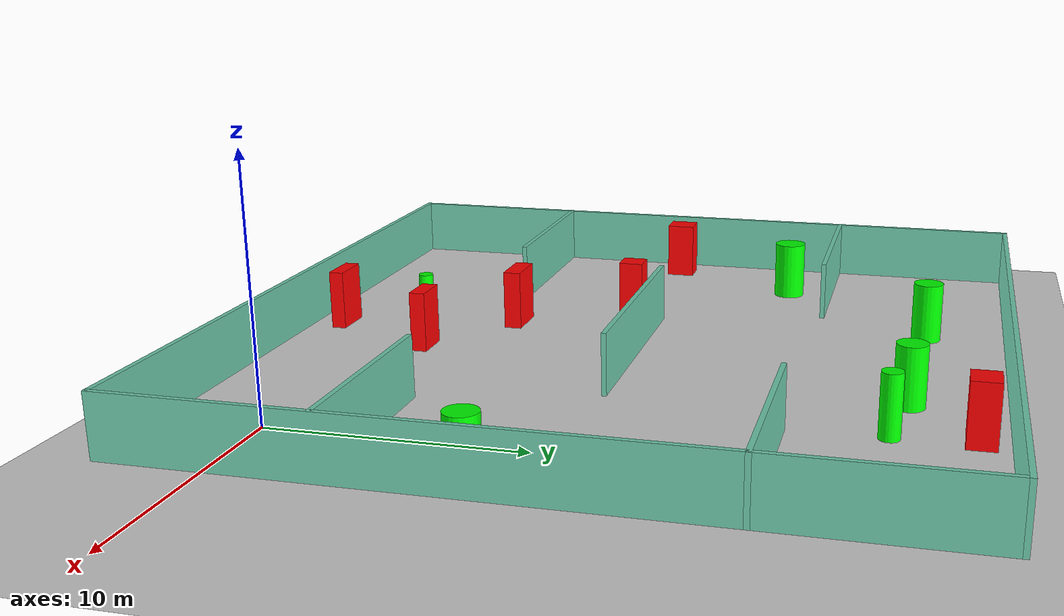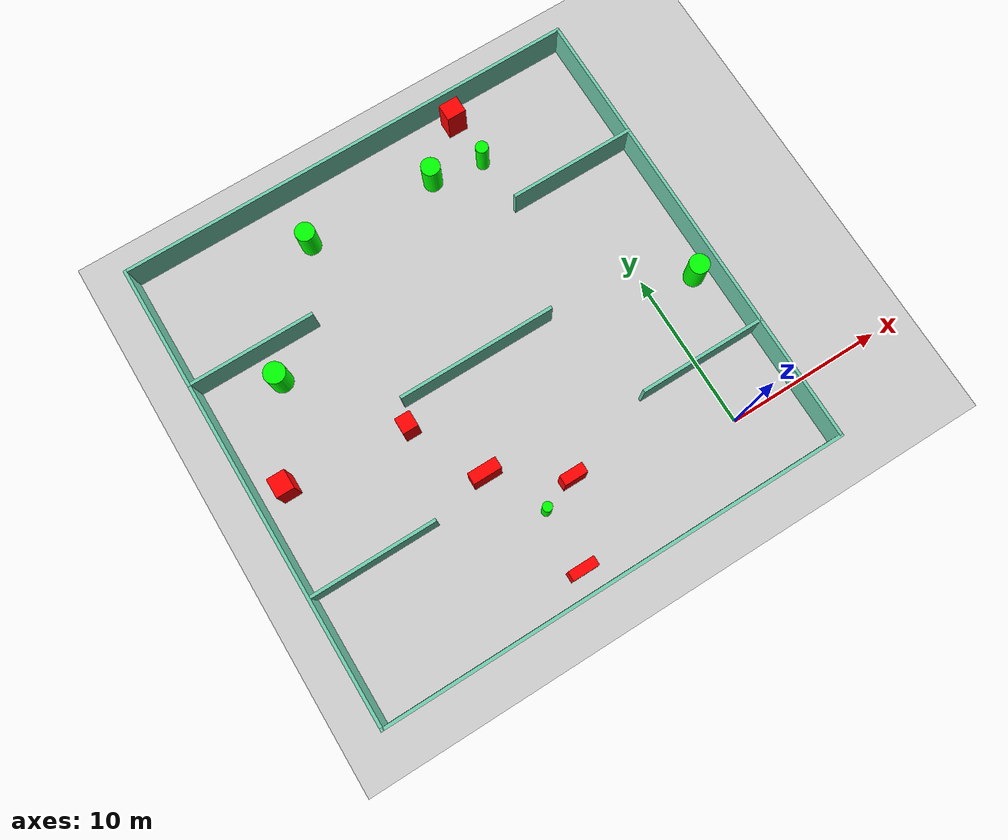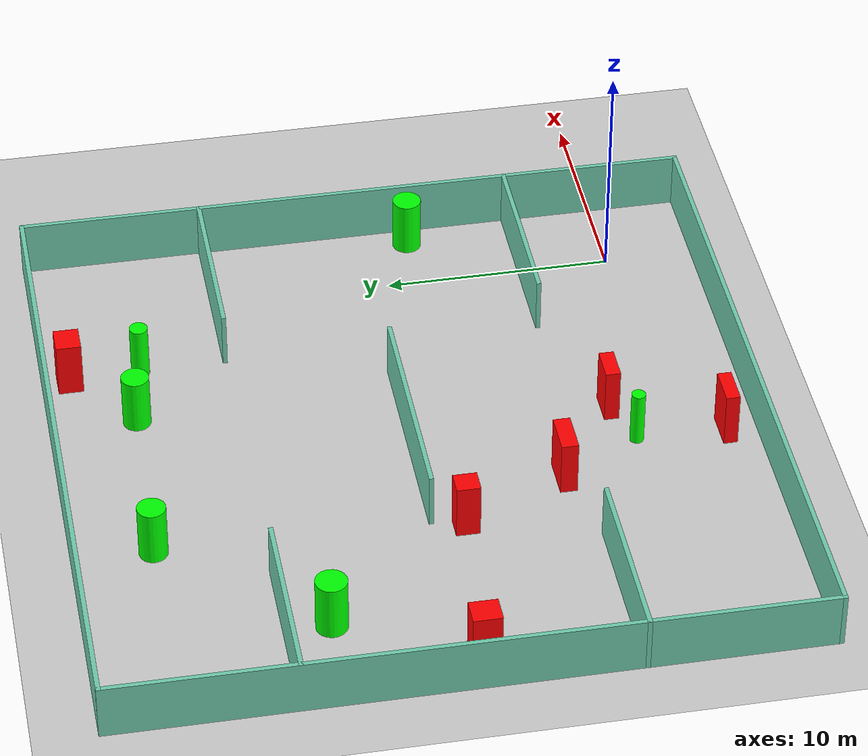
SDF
<sdf version="1.7">
 <world name="default">
  <light name="sun" type="directional">
   <pose>0 0 10 0 -0 0</pose>
   <diffuse>0.8 0.8 0.8 1</diffuse>
   <specular>0.2 0.2 0.2 1</specular>
   <attenuation>
    <range>1000</range>
    <constant>0.9</constant>
    <linear>0.01</linear>
    <quadratic>0.001</quadratic>
   </attenuation>
   <direction>-0.5 0.1 -0.9</direction>
   <spot><inner_angle>0</inner_angle><outer_angle>0</outer_angle><falloff>0</falloff></spot>
  </light>
  <model name="ground_plane">
   <static>1</static>
   <link name="link">
    <collision name="collision">
     <geometry><plane><normal>0 0 1</normal><size>100 100</size></plane></geometry>
     <surface>
      <contact><collide_bitmask>65535</collide_bitmask></contact>
      <friction><ode><mu>100</mu><mu2>50</mu2></ode></friction>
     </surface>
    </collision>
    <visual name="visual">
     <cast_shadows>0</cast_shadows>
     <geometry><plane><normal>0 0 1</normal><size>100 100</size></plane></geometry>
     <material>
      <script><uri>file://media/materials/scripts/gazebo.material</uri><name>Gazebo/Grey</name></script>
     </material>
    </visual>
   </link>
  </model>
  <gravity>0 0 -9.8</gravity>
  <magnetic_field>6e-06 2.3e-05 -4.2e-05</magnetic_field>
  <atmosphere type="adiabatic"/>
  <physics type="ode">
   <max_step_size>0.001</max_step_size>
   <real_time_factor>1</real_time_factor>
   <real_time_update_rate>1000</real_time_update_rate>
  </physics>
  <scene><ambient>0.4 0.4 0.4 1</ambient><background>0.7 0.7 0.7 1</background><shadows>1</shadows></scene>
  <spherical_coordinates>
   <surface_model>EARTH_WGS84</surface_model>
   <latitude_deg>0</latitude_deg>
   <longitude_deg>0</longitude_deg>
   <elevation>0</elevation>
   <heading_deg>0</heading_deg>
  </spherical_coordinates>
  <model name="my_base_walls">
   <link name="Wall_10">
    <collision name="Wall_10_Collision">
     <geometry><box><size>8.2 0.2 2.5</size></box></geometry>
     <pose>0 0 1.25 0 -0 0</pose>
    </collision>
    <visual name="Wall_10_Visual">
     <pose>0 0 1.25 0 -0 0</pose>
     <geometry><box><size>8.2 0.2 2.5</size></box></geometry>
     <material>
      <script><uri>file://media/materials/scripts/gazebo.material</uri><name>Gazebo/Grey</name></script>
      <ambient>0.435294 0.796078 0.67451 1</ambient>
     </material>
     <meta><layer>0</layer></meta>
    </visual>
    <pose>-11 -7 0 0 -0 0</pose>
   </link>
   <link name="Wall_12">
    <collision name="Wall_12_Collision">
     <geometry><box><size>8.2 0.2 2.5</size></box></geometry>
     <pose>0 0 1.25 0 -0 0</pose>
    </collision>
    <visual name="Wall_12_Visual">
     <pose>0 0 1.25 0 -0 0</pose>
     <geometry><box><size>8.2 0.2 2.5</size></box></geometry>
     <material>
      <script><uri>file://media/materials/scripts/gazebo.material</uri><name>Gazebo/Grey</name></script>
      <ambient>0.435294 0.796078 0.67451 1</ambient>
     </material>
     <meta><layer>0</layer></meta>
    </visual>
    <pose>-11 7 0 0 -0 0</pose>
   </link>
   <link name="Wall_14">
    <collision name="Wall_14_Collision">
     <geometry><box><size>8.2 0.2 2.5</size></box></geometry>
     <pose>0 0 1.25 0 -0 0</pose>
    </collision>
    <visual name="Wall_14_Visual">
     <pose>0 0 1.25 0 -0 0</pose>
     <geometry><box><size>8.2 0.2 2.5</size></box></geometry>
     <material>
      <script><uri>file://media/materials/scripts/gazebo.material</uri><name>Gazebo/Grey</name></script>
      <ambient>0.435294 0.796078 0.67451 1</ambient>
     </material>
     <meta><layer>0</layer></meta>
    </visual>
    <pose>11 7 0 0 -0 3.14159</pose>
   </link>
   <link name="Wall_16">
    <collision name="Wall_16_Collision">
     <geometry><box><size>10.2 0.2 2.5</size></box></geometry>
     <pose>0 0 1.25 0 -0 0</pose>
    </collision>
    <visual name="Wall_16_Visual">
     <pose>0 0 1.25 0 -0 0</pose>
     <geometry><box><size>10.2 0.2 2.5</size></box></geometry>
     <material>
      <script><uri>file://media/materials/scripts/gazebo.material</uri><name>Gazebo/Grey</name></script>
      <ambient>0.435294 0.796078 0.67451 1</ambient>
     </material>
     <meta><layer>0</layer></meta>
    </visual>
    <pose>0 0 0 0 -0 3.14159</pose>
   </link>
   <link name="Wall_2">
    <collision name="Wall_2_Collision">
     <geometry><box><size>30.2 0.2 2.5</size></box></geometry>
     <pose>0 0 1.25 0 -0 0</pose>
    </collision>
    <visual name="Wall_2_Visual">
     <pose>0 0 1.25 0 -0 0</pose>
     <geometry><box><size>30.2 0.2 2.5</size></box></geometry>
     <material>
      <script><uri>file://media/materials/scripts/gazebo.material</uri><name>Gazebo/Grey</name></script>
      <ambient>0.435294 0.796078 0.67451 1</ambient>
     </material>
     <meta><layer>0</layer></meta>
    </visual>
    <pose>0 -15 0 0 -0 3.14159</pose>
   </link>
   <link name="Wall_3">
    <collision name="Wall_3_Collision">
     <geometry><box><size>30.2 0.2 2.5</size></box></geometry>
     <pose>0 0 1.25 0 -0 0</pose>
    </collision>
    <visual name="Wall_3_Visual">
     <pose>0 0 1.25 0 -0 0</pose>
     <geometry><box><size>30.2 0.2 2.5</size></box></geometry>
     <material>
      <script><uri>file://media/materials/scripts/gazebo.material</uri><name>Gazebo/Grey</name></script>
      <ambient>0.435294 0.796078 0.67451 1</ambient>
     </material>
     <meta><layer>0</layer></meta>
    </visual>
    <pose>-15 0 0 0 -0 1.5708</pose>
   </link>
   <link name="Wall_4">
    <collision name="Wall_4_Collision">
     <geometry><box><size>30.2 0.2 2.5</size></box></geometry>
     <pose>0 0 1.25 0 -0 0</pose>
    </collision>
    <visual name="Wall_4_Visual">
     <pose>0 0 1.25 0 -0 0</pose>
     <geometry><box><size>30.2 0.2 2.5</size></box></geometry>
     <material>
      <script><uri>file://media/materials/scripts/gazebo.material</uri><name>Gazebo/Grey</name></script>
      <ambient>0.435294 0.796078 0.67451 1</ambient>
     </material>
     <meta><layer>0</layer></meta>
    </visual>
    <pose>0 15 0 0 -0 0</pose>
   </link>
   <link name="Wall_6">
    <collision name="Wall_6_Collision">
     <geometry><box><size>30.2 0.2 2.5</size></box></geometry>
     <pose>0 0 1.25 0 -0 0</pose>
    </collision>
    <visual name="Wall_6_Visual">
     <pose>0 0 1.25 0 -0 0</pose>
     <geometry><box><size>30.2 0.2 2.5</size></box></geometry>
     <material>
      <script><uri>file://media/materials/scripts/gazebo.material</uri><name>Gazebo/Grey</name></script>
      <ambient>0.435294 0.796078 0.67451 1</ambient>
     </material>
     <meta><layer>0</layer></meta>
    </visual>
    <pose>15 0 0 0 -0 1.5708</pose>
   </link>
   <link name="Wall_8">
    <collision name="Wall_8_Collision">
     <geometry><box><size>8.2 0.2 2.5</size></box></geometry>
     <pose>0 0 1.25 0 -0 0</pose>
    </collision>
    <visual name="Wall_8_Visual">
     <pose>0 0 1.25 0 -0 0</pose>
     <geometry><box><size>8.2 0.2 2.5</size></box></geometry>
     <material>
      <script><uri>file://media/materials/scripts/gazebo.material</uri><name>Gazebo/Grey</name></script>
      <ambient>0.435294 0.796078 0.67451 1</ambient>
     </material>
     <meta><layer>0</layer></meta>
    </visual>
    <pose>11 -7 0 0 -0 3.14159</pose>
   </link>
   <static>1</static>
   <pose>-11 11 0 0 -0 0</pose>
  </model>
  <model name="cylinder1">
   <static>1</static>
   <link name="link">
    <inertial>
     <mass>1</mass>
     <inertia><ixx>0.5</ixx><ixy>0</ixy><ixz>0</ixz><iyy>0.5</iyy><iyz>0</iyz><izz>1</izz></inertia>
    </inertial>
    <collision name="collision">
     <geometry><cylinder><radius>0.6361435892740819</radius><length>2.5</length></cylinder></geometry>
    </collision>
    <visual name="visual">
     <geometry><cylinder><radius>0.6361435892740819</radius><length>2.5</length></cylinder></geometry>
     <material>
      <ambient>0 1 0 1</ambient>
      <diffuse>0 1 0 1</diffuse>
      <specular>0.1 0.1 0.1 1</specular>
      <emissive>0 0 0 0</emissive>
     </material>
    </visual>
   </link>
   <pose>2.8973964218934753 8.667422157228792 1.25 0 0 0</pose>
  </model>
  <model name="cylinder2">
   <static>1</static>
   <link name="link">
    <inertial>
     <mass>1</mass>
     <inertia><ixx>0.5</ixx><ixy>0</ixy><ixz>0</ixz><iyy>0.5</iyy><iyz>0</iyz><izz>1</izz></inertia>
    </inertial>
    <collision name="collision">
     <geometry><cylinder><radius>0.3045366505059796</radius><length>2.5</length></cylinder></geometry>
    </collision>
    <visual name="visual">
     <geometry><cylinder><radius>0.3045366505059796</radius><length>2.5</length></cylinder></geometry>
     <material>
      <ambient>0 1 0 1</ambient>
      <diffuse>0 1 0 1</diffuse>
      <specular>0.1 0.1 0.1 1</specular>
      <emissive>0 0 0 0</emissive>
     </material>
    </visual>
   </link>
   <pose>-12.262328720239616 1.348268887009728 1.25 0 0 0</pose>
  </model>
  <model name="cylinder3">
   <static>1</static>
   <link name="link">
    <inertial>
     <mass>1</mass>
     <inertia><ixx>0.5</ixx><ixy>0</ixy><ixz>0</ixz><iyy>0.5</iyy><iyz>0</iyz><izz>1</izz></inertia>
    </inertial>
    <collision name="collision">
     <geometry><cylinder><radius>0.6076944454827637</radius><length>2.5</length></cylinder></geometry>
    </collision>
    <visual name="visual">
     <geometry><cylinder><radius>0.6076944454827637</radius><length>2.5</length></cylinder></geometry>
     <material>
      <ambient>0 1 0 1</ambient>
      <diffuse>0 1 0 1</diffuse>
      <specular>0.1 0.1 0.1 1</specular>
      <emissive>0 0 0 0</emissive>
     </material>
    </visual>
   </link>
   <pose>-7.398265644960354 22.287642319308578 1.25 0 0 0</pose>
  </model>
  <model name="cylinder4">
   <static>1</static>
   <link name="link">
    <inertial>
     <mass>1</mass>
     <inertia><ixx>0.5</ixx><ixy>0</ixy><ixz>0</ixz><iyy>0.5</iyy><iyz>0</iyz><izz>1</izz></inertia>
    </inertial>
    <collision name="collision">
     <geometry><cylinder><radius>0.6138105970313659</radius><length>2.5</length></cylinder></geometry>
    </collision>
    <visual name="visual">
     <geometry><cylinder><radius>0.6138105970313659</radius><length>2.5</length></cylinder></geometry>
     <material>
      <ambient>0 1 0 1</ambient>
      <diffuse>0 1 0 1</diffuse>
      <specular>0.1 0.1 0.1 1</specular>
      <emissive>0 0 0 0</emissive>
     </material>
    </visual>
   </link>
   <pose>-15.841820892351173 22.63871478422462 1.25 0 0 0</pose>
  </model>
  <model name="cylinder5">
   <static>1</static>
   <link name="link">
    <inertial>
     <mass>1</mass>
     <inertia><ixx>0.5</ixx><ixy>0</ixy><ixz>0</ixz><iyy>0.5</iyy><iyz>0</iyz><izz>1</izz></inertia>
    </inertial>
    <collision name="collision">
     <geometry><cylinder><radius>0.6799075808629416</radius><length>2.5</length></cylinder></geometry>
    </collision>
    <visual name="visual">
     <geometry><cylinder><radius>0.6799075808629416</radius><length>2.5</length></cylinder></geometry>
     <material>
      <ambient>0 1 0 1</ambient>
      <diffuse>0 1 0 1</diffuse>
      <specular>0.1 0.1 0.1 1</specular>
      <emissive>0 0 0 0</emissive>
     </material>
    </visual>
   </link>
   <pose>-21.49243007322734 16.071074214220072 1.25 0 0 0</pose>
  </model>
  <model name="cylinder6">
   <static>1</static>
   <link name="link">
    <inertial>
     <mass>1</mass>
     <inertia><ixx>0.5</ixx><ixy>0</ixy><ixz>0</ixz><iyy>0.5</iyy><iyz>0</iyz><izz>1</izz></inertia>
    </inertial>
    <collision name="collision">
     <geometry><cylinder><radius>0.403427218838647</radius><length>2.5</length></cylinder></geometry>
    </collision>
    <visual name="visual">
     <geometry><cylinder><radius>0.403427218838647</radius><length>2.5</length></cylinder></geometry>
     <material>
      <ambient>0 1 0 1</ambient>
      <diffuse>0 1 0 1</diffuse>
      <specular>0.1 0.1 0.1 1</specular>
      <emissive>0 0 0 0</emissive>
     </material>
    </visual>
   </link>
   <pose>-4.11027568784081 21.737477741441545 1.25 0 0 0</pose>
  </model>
  <model name="box1">
   <static>1</static>
   <link name="link">
    <inertial>
     <mass>1</mass>
     <inertia><ixx>0.083</ixx><ixy>0</ixy><ixz>0</ixz><iyy>0.083</iyy><iyz>0</iyz><izz>0.083</izz></inertia>
    </inertial>
    <collision name="collision">
     <geometry><box><size>1.6965592179395699 0.610431928499144 2.5</size></box></geometry>
    </collision>
    <visual name="visual">
     <geometry><box><size>1.6965592179395699 0.610431928499144 2.5</size></box></geometry>
     <material>
      <ambient>1 0 0 1</ambient>
      <diffuse>1 0 0 1</diffuse>
      <specular>0.1 0.1 0.1 1</specular>
      <emissive>0 0 0 0</emissive>
     </material>
    </visual>
    <sensor name="my_contact" type="contact">
     <contact><collision>box_collision</collision><topic>__default_topic__</topic></contact>
    </sensor>
   </link>
   <pose>-12.370810675328899 -2.556044522518693 1.25 0 0 0</pose>
  </model>
  <model name="box2">
   <static>1</static>
   <link name="link">
    <inertial>
     <mass>1</mass>
     <inertia><ixx>0.083</ixx><ixy>0</ixy><ixz>0</ixz><iyy>0.083</iyy><iyz>0</iyz><izz>0.083</izz></inertia>
    </inertial>
    <collision name="collision">
     <geometry><box><size>1.8271627445793088 0.7361027400809754 2.5</size></box></geometry>
    </collision>
    <visual name="visual">
     <geometry><box><size>1.8271627445793088 0.7361027400809754 2.5</size></box></geometry>
     <material>
      <ambient>1 0 0 1</ambient>
      <diffuse>1 0 0 1</diffuse>
      <specular>0.1 0.1 0.1 1</specular>
      <emissive>0 0 0 0</emissive>
     </material>
    </visual>
    <sensor name="my_contact" type="contact">
     <contact><collision>box_collision</collision><topic>__default_topic__</topic></contact>
    </sensor>
   </link>
   <pose>-14.185770876921879 4.913891002465199 1.25 0 0 0</pose>
  </model>
  <model name="box3">
   <static>1</static>
   <link name="link">
    <inertial>
     <mass>1</mass>
     <inertia><ixx>0.083</ixx><ixy>0</ixy><ixz>0</ixz><iyy>0.083</iyy><iyz>0</iyz><izz>0.083</izz></inertia>
    </inertial>
    <collision name="collision">
     <geometry><box><size>0.9972330321388978 1.0286875285890684 2.5</size></box></geometry>
    </collision>
    <visual name="visual">
     <geometry><box><size>0.9972330321388978 1.0286875285890684 2.5</size></box></geometry>
     <material>
      <ambient>1 0 0 1</ambient>
      <diffuse>1 0 0 1</diffuse>
      <specular>0.1 0.1 0.1 1</specular>
      <emissive>0 0 0 0</emissive>
     </material>
    </visual>
    <sensor name="my_contact" type="contact">
     <contact><collision>box_collision</collision><topic>__default_topic__</topic></contact>
    </sensor>
   </link>
   <pose>-16.52467642075709 9.59346463324929 1.25 0 0 0</pose>
  </model>
  <model name="box4">
   <static>1</static>
   <link name="link">
    <inertial>
     <mass>1</mass>
     <inertia><ixx>0.083</ixx><ixy>0</ixy><ixz>0</ixz><iyy>0.083</iyy><iyz>0</iyz><izz>0.083</izz></inertia>
    </inertial>
    <collision name="collision">
     <geometry><box><size>1.4979148244867826 0.649164189134337 2.5</size></box></geometry>
    </collision>
    <visual name="visual">
     <geometry><box><size>1.4979148244867826 0.649164189134337 2.5</size></box></geometry>
     <material>
      <ambient>1 0 0 1</ambient>
      <diffuse>1 0 0 1</diffuse>
      <specular>0.1 0.1 0.1 1</specular>
      <emissive>0 0 0 0</emissive>
     </material>
    </visual>
    <sensor name="my_contact" type="contact">
     <contact><collision>box_collision</collision><topic>__default_topic__</topic></contact>
    </sensor>
   </link>
   <pose>-10.040515854740956 2.12206986643832 1.25 0 0 0</pose>
  </model>
  <model name="box5">
   <static>1</static>
   <link name="link">
    <inertial>
     <mass>1</mass>
     <inertia><ixx>0.083</ixx><ixy>0</ixy><ixz>0</ixz><iyy>0.083</iyy><iyz>0</iyz><izz>0.083</izz></inertia>
    </inertial>
    <collision name="collision">
     <geometry><box><size>1.1334939917353908 1.2372888693105142 2.5</size></box></geometry>
    </collision>
    <visual name="visual">
     <geometry><box><size>1.1334939917353908 1.2372888693105142 2.5</size></box></geometry>
     <material>
      <ambient>1 0 0 1</ambient>
      <diffuse>1 0 0 1</diffuse>
      <specular>0.1 0.1 0.1 1</specular>
      <emissive>0 0 0 0</emissive>
     </material>
    </visual>
    <sensor name="my_contact" type="contact">
     <contact><collision>box_collision</collision><topic>__default_topic__</topic></contact>
    </sensor>
   </link>
   <pose>-24.273884055155754 10.29891868412448 1.25 0 0 0</pose>
  </model>
  <model name="box6">
   <static>1</static>
   <link name="link">
    <inertial>
     <mass>1</mass>
     <inertia><ixx>0.083</ixx><ixy>0</ixy><ixz>0</ixz><iyy>0.083</iyy><iyz>0</iyz><izz>0.083</izz></inertia>
    </inertial>
    <collision name="collision">
     <geometry><box><size>1.2586497030609913 1.0925354669634304 2.5</size></box></geometry>
    </collision>
    <visual name="visual">
     <geometry><box><size>1.2586497030609913 1.0925354669634304 2.5</size></box></geometry>
     <material>
      <ambient>1 0 0 1</ambient>
      <diffuse>1 0 0 1</diffuse>
      <specular>0.1 0.1 0.1 1</specular>
      <emissive>0 0 0 0</emissive>
     </material>
    </visual>
    <sensor name="my_contact" type="contact">
     <contact><collision>box_collision</collision><topic>__default_topic__</topic></contact>
    </sensor>
   </link>
   <pose>-4.31902664844481 24.865856167111325 1.25 0 0 0</pose>
  </model>
 </world>
</sdf>
